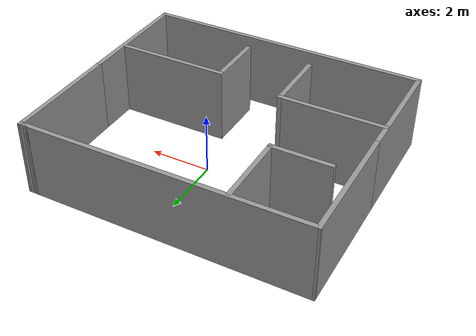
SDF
<?xml version='1.0'?>
<sdf version='1.7'>
  <model name='room'>
    <pose>-0.45513 -0.443479 0 0 -0 0</pose>
    <link name='Wall_11'>
      <collision name='Wall_11_Collision'>
        <geometry>
          <box>
            <size>0.15 0.15 2.5</size>
          </box>
        </geometry>
        <pose>0 0 1.25 0 -0 0</pose>
      </collision>
      <visual name='Wall_11_Visual'>
        <pose>0 0 1.25 0 -0 0</pose>
        <geometry>
          <box>
            <size>0.15 0.15 2.5</size>
          </box>
        </geometry>
        <material>
          <script>
            <uri>file://media/materials/scripts/gazebo.material</uri>
            <name>Gazebo/Grey</name>
          </script>
          <ambient>1 1 1 1</ambient>
        </material>
        <meta>
          <layer>0</layer>
        </meta>
      </visual>
      <pose>4.39868 3.89605 0 0 -0 0</pose>
    </link>
    <link name='Wall_12'>
      <collision name='Wall_12_Collision'>
        <geometry>
          <box>
            <size>0.25 0.15 2.5</size>
          </box>
        </geometry>
        <pose>0 0 1.25 0 -0 0</pose>
      </collision>
      <visual name='Wall_12_Visual'>
        <pose>0 0 1.25 0 -0 0</pose>
        <geometry>
          <box>
            <size>0.25 0.15 2.5</size>
          </box>
        </geometry>
        <material>
          <script>
            <uri>file://media/materials/scripts/gazebo.material</uri>
            <name>Gazebo/Grey</name>
          </script>
          <ambient>1 1 1 1</ambient>
        </material>
        <meta>
          <layer>0</layer>
        </meta>
      </visual>
      <pose>4.44868 3.89605 0 0 -0 0</pose>
    </link>
    <link name='Wall_13'>
      <collision name='Wall_13_Collision'>
        <geometry>
          <box>
            <size>0.25 0.15 2.5</size>
          </box>
        </geometry>
        <pose>0 0 1.25 0 -0 0</pose>
      </collision>
      <visual name='Wall_13_Visual'>
        <pose>0 0 1.25 0 -0 0</pose>
        <geometry>
          <box>
            <size>0.25 0.15 2.5</size>
          </box>
        </geometry>
        <material>
          <script>
            <uri>file://media/materials/scripts/gazebo.material</uri>
            <name>Gazebo/Grey</name>
          </script>
          <ambient>1 1 1 1</ambient>
        </material>
        <meta>
          <layer>0</layer>
        </meta>
      </visual>
      <pose>4.54868 3.89605 0 0 -0 0</pose>
    </link>
    <link name='Wall_14'>
      <collision name='Wall_14_Collision'>
        <geometry>
          <box>
            <size>4.00033 0.15 2.5</size>
          </box>
        </geometry>
        <pose>0 0 1.25 0 -0 0</pose>
      </collision>
      <visual name='Wall_14_Visual'>
        <pose>0 0 1.25 0 -0 0</pose>
        <geometry>
          <box>
            <size>4.00033 0.15 2.5</size>
          </box>
        </geometry>
        <material>
          <script>
            <uri>file://media/materials/scripts/gazebo.material</uri>
            <name>Gazebo/Grey</name>
          </script>
          <ambient>1 1 1 1</ambient>
        </material>
        <meta>
          <layer>0</layer>
        </meta>
      </visual>
      <pose>4.62368 1.97105 0 0 -0 -1.55781</pose>
    </link>
    <link name='Wall_16'>
      <collision name='Wall_16_Collision'>
        <geometry>
          <box>
            <size>2.5 0.15 2.5</size>
          </box>
        </geometry>
        <pose>0 0 1.25 0 -0 0</pose>
      </collision>
      <visual name='Wall_16_Visual'>
        <pose>0 0 1.25 0 -0 0</pose>
        <geometry>
          <box>
            <size>2.5 0.15 2.5</size>
          </box>
        </geometry>
        <material>
          <script>
            <uri>file://media/materials/scripts/gazebo.material</uri>
            <name>Gazebo/Grey</name>
          </script>
          <ambient>1 1 1 1</ambient>
        </material>
        <meta>
          <layer>0</layer>
        </meta>
      </visual>
      <pose>-2.15469 2.5789 0 0 -0 -1.5708</pose>
    </link>
    <link name='Wall_17'>
      <collision name='Wall_17_Collision'>
        <geometry>
          <box>
            <size>2 0.15 2.5</size>
          </box>
        </geometry>
        <pose>0 0 1.25 0 -0 0</pose>
      </collision>
      <visual name='Wall_17_Visual'>
        <pose>0 0 1.25 0 -0 0</pose>
        <geometry>
          <box>
            <size>2 0.15 2.5</size>
          </box>
        </geometry>
        <material>
          <script>
            <uri>file://media/materials/scripts/gazebo.material</uri>
            <name>Gazebo/Grey</name>
          </script>
          <ambient>1 1 1 1</ambient>
        </material>
        <meta>
          <layer>0</layer>
        </meta>
      </visual>
      <pose>-3.0797 1.4039 0 0 -0 3.14159</pose>
    </link>
    <link name='Wall_19'>
      <collision name='Wall_19_Collision'>
        <geometry>
          <box>
            <size>3.5 0.15 2.5</size>
          </box>
        </geometry>
        <pose>0 0 1.25 0 -0 0</pose>
      </collision>
      <visual name='Wall_19_Visual'>
        <pose>0 0 1.25 0 -0 0</pose>
        <geometry>
          <box>
            <size>3.5 0.15 2.5</size>
          </box>
        </geometry>
        <material>
          <script>
            <uri>file://media/materials/scripts/gazebo.material</uri>
            <name>Gazebo/Grey</name>
          </script>
          <ambient>1 1 1 1</ambient>
        </material>
        <meta>
          <layer>0</layer>
        </meta>
      </visual>
      <pose>-2.98179 -0.979963 0 0 -0 0</pose>
    </link>
    <link name='Wall_2'>
      <collision name='Wall_2_Collision'>
        <geometry>
          <box>
            <size>3.75 0.15 2.5</size>
          </box>
        </geometry>
        <pose>0 0 1.25 0 -0 0</pose>
      </collision>
      <visual name='Wall_2_Visual'>
        <pose>0 0 1.25 0 -0 0</pose>
        <geometry>
          <box>
            <size>3.75 0.15 2.5</size>
          </box>
        </geometry>
        <material>
          <script>
            <uri>file://media/materials/scripts/gazebo.material</uri>
            <name>Gazebo/Grey</name>
          </script>
          <ambient>1 1 1 1</ambient>
        </material>
        <meta>
          <layer>0</layer>
        </meta>
      </visual>
      <pose>-4.67487 -2.09652 0 0 -0 -1.5708</pose>
    </link>
    <link name='Wall_20'>
      <collision name='Wall_20_Collision'>
        <geometry>
          <box>
            <size>2.25 0.15 2.5</size>
          </box>
        </geometry>
        <pose>0 0 1.25 0 -0 0</pose>
      </collision>
      <visual name='Wall_20_Visual'>
        <pose>0 0 1.25 0 -0 0</pose>
        <geometry>
          <box>
            <size>2.25 0.15 2.5</size>
          </box>
        </geometry>
        <material>
          <script>
            <uri>file://media/materials/scripts/gazebo.material</uri>
            <name>Gazebo/Grey</name>
          </script>
          <ambient>1 1 1 1</ambient>
        </material>
        <meta>
          <layer>0</layer>
        </meta>
      </visual>
      <pose>-1.30679 -2.02996 0 0 -0 -1.5708</pose>
    </link>
    <link name='Wall_22'>
      <collision name='Wall_22_Collision'>
        <geometry>
          <box>
            <size>3.75 0.15 2.5</size>
          </box>
        </geometry>
        <pose>0 0 1.25 0 -0 0</pose>
      </collision>
      <visual name='Wall_22_Visual'>
        <pose>0 0 1.25 0 -0 0</pose>
        <geometry>
          <box>
            <size>3.75 0.15 2.5</size>
          </box>
        </geometry>
        <material>
          <script>
            <uri>file://media/materials/scripts/gazebo.material</uri>
            <name>Gazebo/Grey</name>
          </script>
          <ambient>1 1 1 1</ambient>
        </material>
        <meta>
          <layer>0</layer>
        </meta>
      </visual>
      <pose>2.74003 -1.31227 0 0 -0 0</pose>
    </link>
    <link name='Wall_24'>
      <collision name='Wall_24_Collision'>
        <geometry>
          <box>
            <size>2 0.15 2.5</size>
          </box>
        </geometry>
        <pose>0 0 1.25 0 -0 0</pose>
      </collision>
      <visual name='Wall_24_Visual'>
        <pose>0 0 1.25 0 -0 0</pose>
        <geometry>
          <box>
            <size>2 0.15 2.5</size>
          </box>
        </geometry>
        <material>
          <script>
            <uri>file://media/materials/scripts/gazebo.material</uri>
            <name>Gazebo/Grey</name>
          </script>
          <ambient>1 1 1 1</ambient>
        </material>
        <meta>
          <layer>0</layer>
        </meta>
      </visual>
      <pose>0.940026 -2.23727 0 0 -0 -1.5708</pose>
    </link>
    <link name='Wall_3'>
      <collision name='Wall_3_Collision'>
        <geometry>
          <box>
            <size>0.15 0.15 2.5</size>
          </box>
        </geometry>
        <pose>0 0 1.25 0 -0 0</pose>
      </collision>
      <visual name='Wall_3_Visual'>
        <pose>0 0 1.25 0 -0 0</pose>
        <geometry>
          <box>
            <size>0.15 0.15 2.5</size>
          </box>
        </geometry>
        <material>
          <script>
            <uri>file://media/materials/scripts/gazebo.material</uri>
            <name>Gazebo/Grey</name>
          </script>
          <ambient>1 1 1 1</ambient>
        </material>
        <meta>
          <layer>0</layer>
        </meta>
      </visual>
      <pose>-4.67487 -3.89652 0 0 -0 0</pose>
    </link>
    <link name='Wall_4'>
      <collision name='Wall_4_Collision'>
        <geometry>
          <box>
            <size>9.5 0.15 2.5</size>
          </box>
        </geometry>
        <pose>0 0 1.25 0 -0 0</pose>
      </collision>
      <visual name='Wall_4_Visual'>
        <pose>0 0 1.25 0 -0 0</pose>
        <geometry>
          <box>
            <size>9.5 0.15 2.5</size>
          </box>
        </geometry>
        <material>
          <script>
            <uri>file://media/materials/scripts/gazebo.material</uri>
            <name>Gazebo/Grey</name>
          </script>
          <ambient>1 1 1 1</ambient>
        </material>
        <meta>
          <layer>0</layer>
        </meta>
      </visual>
      <pose>0.00013 -3.89652 0 0 -0 0</pose>
    </link>
    <link name='Wall_5'>
      <collision name='Wall_5_Collision'>
        <geometry>
          <box>
            <size>4.09266 0.15 2.5</size>
          </box>
        </geometry>
        <pose>0 0 1.25 0 -0 0</pose>
      </collision>
      <visual name='Wall_5_Visual'>
        <pose>0 0 1.25 0 -0 0</pose>
        <geometry>
          <box>
            <size>4.09266 0.15 2.5</size>
          </box>
        </geometry>
        <material>
          <script>
            <uri>file://media/materials/scripts/gazebo.material</uri>
            <name>Gazebo/Grey</name>
          </script>
          <ambient>1 1 1 1</ambient>
        </material>
        <meta>
          <layer>0</layer>
        </meta>
      </visual>
      <pose>4.6619 -1.92523 0 0 -0 1.5775</pose>
    </link>
    <link name='Wall_7'>
      <collision name='Wall_7_Collision'>
        <geometry>
          <box>
            <size>4.25 0.15 2.5</size>
          </box>
        </geometry>
        <pose>0 0 1.25 0 -0 0</pose>
      </collision>
      <visual name='Wall_7_Visual'>
        <pose>0 0 1.25 0 -0 0</pose>
        <geometry>
          <box>
            <size>4.25 0.15 2.5</size>
          </box>
        </geometry>
        <material>
          <script>
            <uri>file://media/materials/scripts/gazebo.material</uri>
            <name>Gazebo/Grey</name>
          </script>
          <ambient>1 1 1 1</ambient>
        </material>
        <meta>
          <layer>0</layer>
        </meta>
      </visual>
      <pose>-4.67487 1.75348 0 0 -0 1.5708</pose>
    </link>
    <link name='Wall_8'>
      <collision name='Wall_8_Collision'>
        <geometry>
          <box>
            <size>9.22402 0.15 2.5</size>
          </box>
        </geometry>
        <pose>0 0 1.25 0 -0 0</pose>
      </collision>
      <visual name='Wall_8_Visual'>
        <pose>0 0 1.25 0 -0 0</pose>
        <geometry>
          <box>
            <size>9.22402 0.15 2.5</size>
          </box>
        </geometry>
        <material>
          <script>
            <uri>file://media/materials/scripts/gazebo.material</uri>
            <name>Gazebo/Grey</name>
          </script>
          <ambient>1 1 1 1</ambient>
        </material>
        <meta>
          <layer>0</layer>
        </meta>
      </visual>
      <pose>-0.138095 3.84977 0 0 -0 0.010202</pose>
    </link>
    <static>1</static>
  </model>
</sdf>
